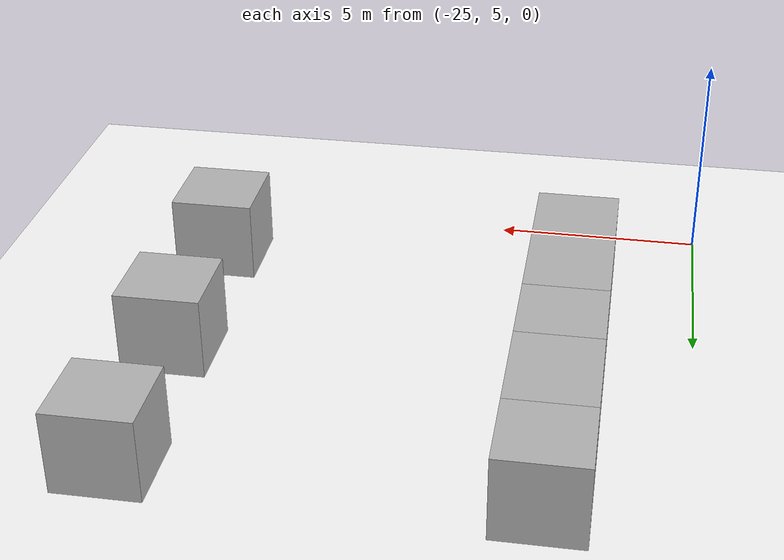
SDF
<sdf version="1.10">
 <world name="default">
  <model name="ceiling">
   <pose>-2.9699999999999998
        11.25
        3.0
        0
        3.141592653589793
        0</pose>
   <static>true</static>
   <link name="link">
    <visual name="visual">
     <geometry><plane><normal>0 0 1</normal><size>49.5 22.5</size></plane></geometry>
     <material>
      <ambient>1 1 1 1</ambient>
      <diffuse>1 1 1 1</diffuse>
      <specular>0.2 0.2 0.2 1</specular>
      <pbr>
       <metal>
        <albedo_map>model://office_media/materials/textures/ceiling.png</albedo_map>
        <metalness>0</metalness>
        <roughness>0.8</roughness>
       </metal>
      </pbr>
     </material>
    </visual>
   </link>
  </model>
  <model name="floor">
   <pose>-2.9699999999999998
        11.25
        -0.001
        0
        0
        0</pose>
   <static>true</static>
   <link name="link">
    <visual name="visual">
     <geometry><plane><normal>0 0 1</normal><size>49.5 22.5</size></plane></geometry>
     <material>
      <ambient>1 1 1 1</ambient>
      <diffuse>1 1 1 1</diffuse>
      <specular>0.2 0.2 0.2 1</specular>
      <pbr>
       <metal>
        <albedo_map>model://office_media/materials/textures/hallway.png</albedo_map>
        <metalness>0</metalness>
        <roughness>0.8</roughness>
       </metal>
      </pbr>
     </material>
    </visual>
    <collision name="collision">
     <geometry><plane><normal>0 0 1</normal><size>49.5 22.5</size></plane></geometry>
     <surface><friction><ode><mu>1</mu><mu2>1</mu2></ode></friction></surface>
    </collision>
   </link>
  </model>
  <model name="deadend_blocker_north">
   <static>true</static>
   <pose>-13.0 16.5 1.0 0 0 0</pose>
   <link name="link">
    <collision name="collision"><geometry><box><size>2.0 2.0 2.0</size></box></geometry></collision>
    <visual name="visual"><geometry><box><size>2.0 2.0 2.0</size></box></geometry></visual>
   </link>
  </model>
  <model name="deadend_blocker_mid">
   <static>true</static>
   <pose>-13.0 12.0 1.0 0 0 0</pose>
   <link name="link">
    <collision name="collision"><geometry><box><size>2.0 2.0 2.0</size></box></geometry></collision>
    <visual name="visual"><geometry><box><size>2.0 2.0 2.0</size></box></geometry></visual>
   </link>
  </model>
  <model name="deadend_blocker_south">
   <static>true</static>
   <pose>-13.0 7.5 1.0 0 0 0</pose>
   <link name="link">
    <collision name="collision"><geometry><box><size>2.0 2.0 2.0</size></box></geometry></collision>
    <visual name="visual"><geometry><box><size>2.0 2.0 2.0</size></box></geometry></visual>
   </link>
  </model>
  <model name="deadend_blocker_west_33">
   <static>true</static>
   <pose>-22.0 16.5 1.0 0 0 0</pose>
   <link name="link">
    <collision name="collision"><geometry><box><size>2.0 2.0 2.0</size></box></geometry></collision>
    <visual name="visual"><geometry><box><size>2.0 2.0 2.0</size></box></geometry></visual>
   </link>
  </model>
  <model name="deadend_blocker_west_32">
   <static>true</static>
   <pose>-22.0 12.0 1.0 0 0 0</pose>
   <link name="link">
    <collision name="collision"><geometry><box><size>2.0 2.0 2.0</size></box></geometry></collision>
    <visual name="visual"><geometry><box><size>2.0 2.0 2.0</size></box></geometry></visual>
   </link>
  </model>
  <model name="deadend_blocker_west_31">
   <static>true</static>
   <pose>-22.0 7.5 1.0 0 0 0</pose>
   <link name="link">
    <collision name="collision"><geometry><box><size>2.0 2.0 2.0</size></box></geometry></collision>
    <visual name="visual"><geometry><box><size>2.0 2.0 2.0</size></box></geometry></visual>
   </link>
  </model>
  <model name="deadend_blocker_gap_south_mid">
   <static>true</static>
   <pose>-22.0 9.75 1.0 0 0 0</pose>
   <link name="link">
    <collision name="collision"><geometry><box><size>2.0 2.5 2.0</size></box></geometry></collision>
    <visual name="visual"><geometry><box><size>2.0 2.5 2.0</size></box></geometry></visual>
   </link>
  </model>
  <model name="deadend_blocker_gap_mid_north">
   <static>true</static>
   <pose>-22.0 14.25 1.0 0 0 0</pose>
   <link name="link">
    <collision name="collision"><geometry><box><size>2.0 2.5 2.0</size></box></geometry></collision>
    <visual name="visual"><geometry><box><size>2.0 2.5 2.0</size></box></geometry></visual>
   </link>
  </model>
 </world>
</sdf>
